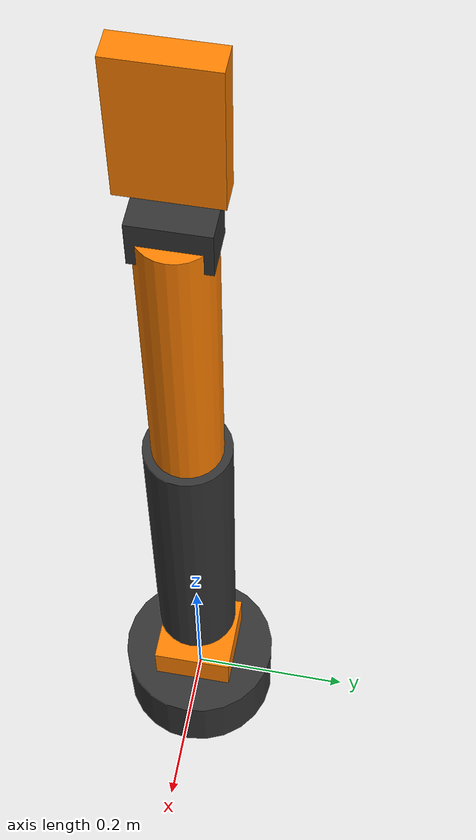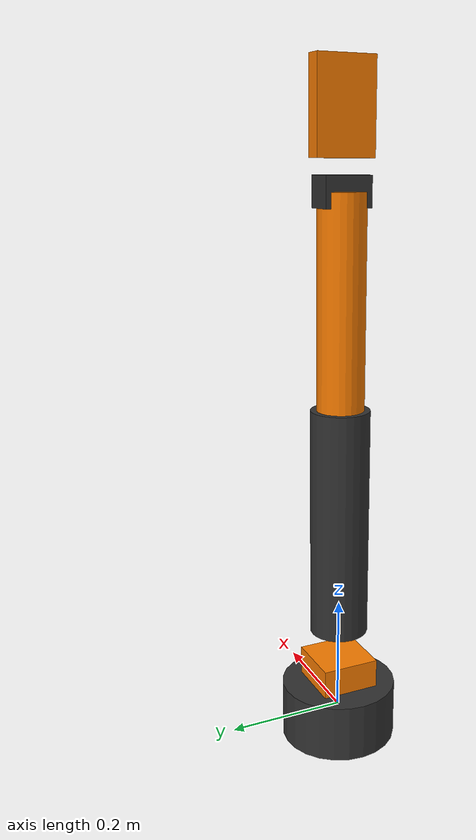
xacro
<?xml version="1.0"?>
<robot xmlns:xacro="http://www.ros.org/wiki/xacro" name="urc_arm">

  <xacro:property name="link1_len" value="0.1" /> <xacro:property name="link2_len" value="0.4" /> <xacro:property name="link3_len" value="0.35" /> <xacro:property name="link4_len" value="0.1" /> <xacro:property name="gripper_len" value="0.15" /> <xacro:property name="PI" value="3.14159265359" />

  <material name="orange"><color rgba="1.0 0.5 0.0 1.0"/></material>
  <material name="grey"><color rgba="0.2 0.2 0.2 1.0"/></material>

  <link name="base_link">
    <visual>
      <geometry><cylinder radius="0.1" length="${link1_len}"/></geometry>
      <material name="grey"/>
    </visual>
    <collision>
      <geometry><cylinder radius="0.1" length="${link1_len}"/></geometry>
    </collision>
  </link>

  <joint name="joint_1" type="revolute">
    <parent link="base_link"/>
    <child link="shoulder_link"/>
    <origin xyz="0 0 ${link1_len/2}" rpy="0 0 0"/>
    <axis xyz="0 0 1"/>
    <limit lower="-3.14" upper="3.14" effort="100" velocity="1.0"/>
  </joint>

  <link name="shoulder_link">
    <visual>
      <geometry><box size="0.1 0.1 0.1"/></geometry>
      <material name="orange"/>
    </visual>
  </link>

  <joint name="joint_2" type="revolute">
    <parent link="shoulder_link"/>
    <child link="upper_arm_link"/>
    <origin xyz="0 0 0.1" rpy="0 0 0"/>
    <axis xyz="0 1 0"/>
    <limit lower="-1.57" upper="1.57" effort="200" velocity="1.0"/>
  </joint>

  <link name="upper_arm_link">
    <visual>
      <origin xyz="0 0 ${link2_len/2}" rpy="0 0 0"/>
      <geometry><cylinder radius="0.05" length="${link2_len}"/></geometry>
      <material name="grey"/>
    </visual>
    <collision>
      <origin xyz="0 0 ${link2_len/2}" rpy="0 0 0"/>
      <geometry><cylinder radius="0.05" length="${link2_len}"/></geometry>
    </collision>
  </link>

  <joint name="joint_3" type="revolute">
    <parent link="upper_arm_link"/>
    <child link="forearm_link"/>
    <origin xyz="0 0 ${link2_len}" rpy="0 0 0"/>
    <axis xyz="0 1 0"/>
    <limit lower="-2.5" upper="2.5" effort="150" velocity="1.0"/>
  </joint>

  <link name="forearm_link">
    <visual>
      <origin xyz="0 0 ${link3_len/2}" rpy="0 0 0"/>
      <geometry><cylinder radius="0.04" length="${link3_len}"/></geometry>
      <material name="orange"/>
    </visual>
    <collision>
      <origin xyz="0 0 ${link3_len/2}" rpy="0 0 0"/>
      <geometry><cylinder radius="0.04" length="${link3_len}"/></geometry>
    </collision>
  </link>

  <joint name="joint_4" type="revolute">
    <parent link="forearm_link"/>
    <child link="wrist_link"/>
    <origin xyz="0 0 ${link3_len}" rpy="0 0 0"/>
    <axis xyz="0 1 0"/>
    <limit lower="-1.57" upper="1.57" effort="50" velocity="1.5"/>
  </joint>

  <link name="wrist_link">
    <visual>
      <geometry><box size="0.05 0.08 0.05"/></geometry>
      <material name="grey"/>
    </visual>
  </link>

  <joint name="joint_5" type="revolute">
    <parent link="wrist_link"/>
    <child link="end_effector_link"/>
    <origin xyz="0 0 0.05" rpy="0 0 0"/>
    <axis xyz="1 0 0"/> <limit lower="-3.14" upper="3.14" effort="20" velocity="2.0"/>
  </joint>

  <link name="end_effector_link">
    <visual>
      <origin xyz="0 0 ${gripper_len/2}" rpy="0 0 0"/>
      <geometry><box size="0.03 0.1 ${gripper_len}"/></geometry>
      <material name="orange"/>
    </visual>
    <collision>
      <origin xyz="0 0 ${gripper_len/2}" rpy="0 0 0"/>
      <geometry><box size="0.03 0.1 ${gripper_len}"/></geometry>
    </collision>
  </link>

  <joint name="camera_joint" type="fixed">
    <parent link="end_effector_link"/>
    <child link="camera_link"/>
    <origin xyz="0.03 0 0.05" rpy="0 -1.57 0"/> </joint>
  <link name="camera_link"/>

  <joint name="tof_joint" type="fixed">
    <parent link="end_effector_link"/>
    <child link="tof_link"/>
    <origin xyz="0.03 0.02 0.05" rpy="0 -1.57 0"/>
  </joint>
  <link name="tof_link"/>

</robot>
